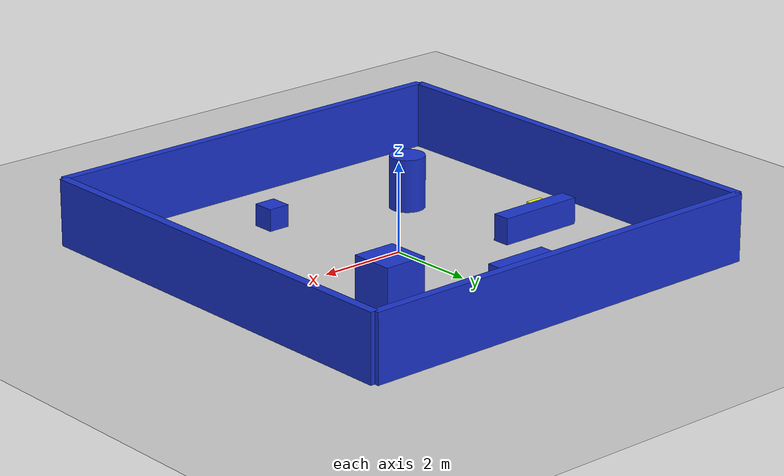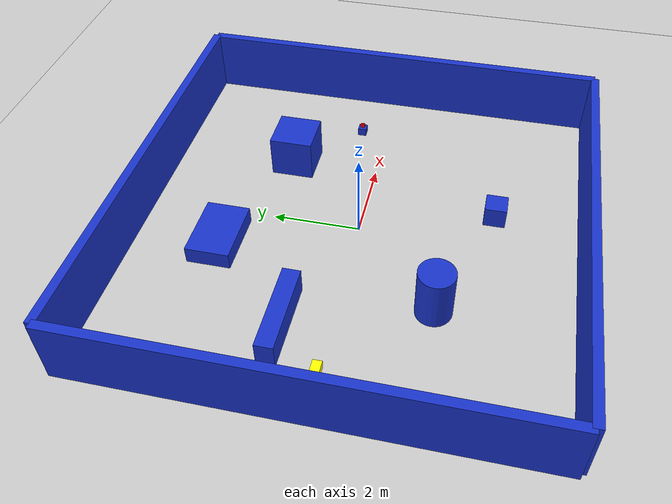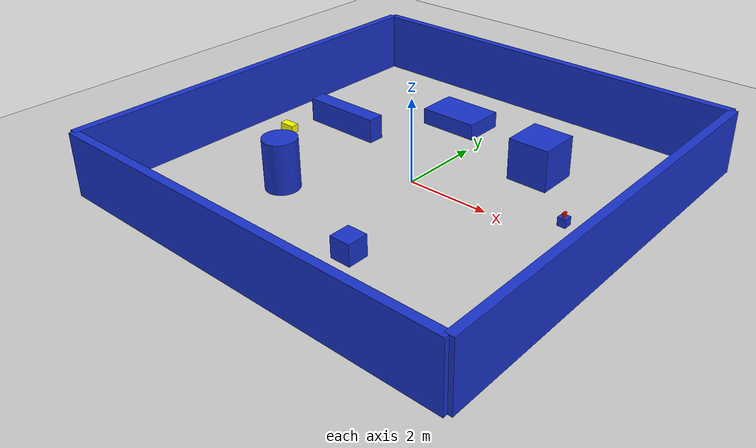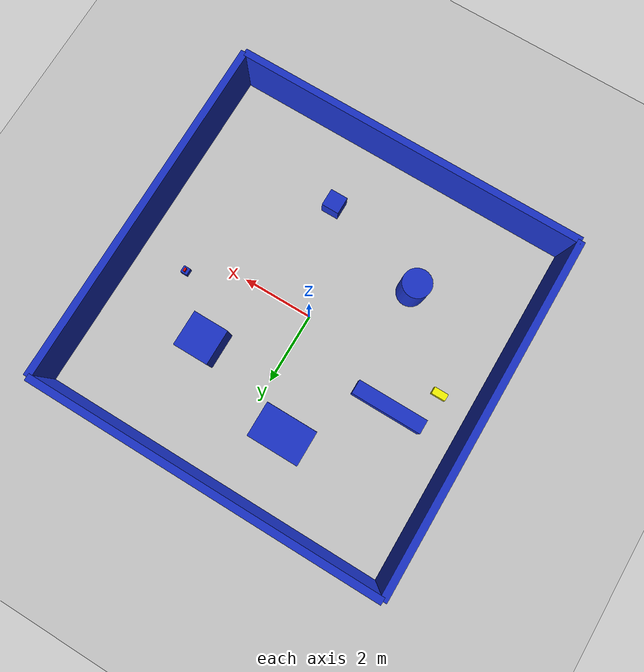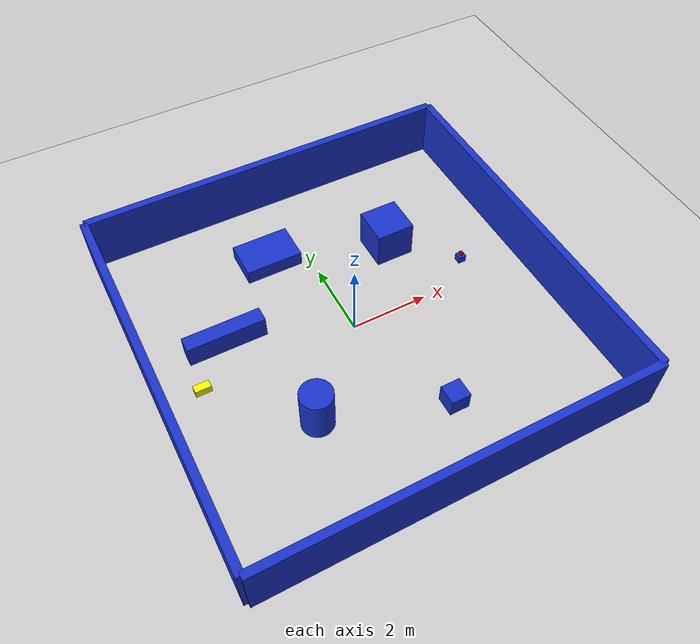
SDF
<?xml version="1.0"?>
<sdf version="1.9">
    <world name="empty_world">
        <physics name="1ms" type="ignored">
            <max_step_size>0.001</max_step_size>
            <real_time_factor>1.0</real_time_factor>
        </physics>
        <light type="directional" name="sun">
            <cast_shadows>true</cast_shadows>
            <pose>0 0 10 0 0 0</pose>
            <diffuse>0.8 0.8 0.8 1</diffuse>
            <specular>0.2 0.2 0.2 1</specular>
            <attenuation>
                <range>1000</range>
                <constant>0.9</constant>
                <linear>0.01</linear>
                <quadratic>0.001</quadratic>
            </attenuation>
            <direction>-0.5 0.1 -0.9</direction>
        </light>
        <gravity>0 0 -9.8000000000000007</gravity>
        <scene>
            <ambient>0.400000006 0.400000006 0.400000006 1</ambient>
            <background>0.699999988 0.699999988 0.699999988 1</background>
            <shadows>true</shadows>
        </scene>
        <!-- Ground plane -->
        <model name="ground_plane">
            <static>true</static>
            <link name="link">
                <collision name="collision">
                    <geometry>
                        <plane>
                            <normal>0 0 1</normal>
                            <size>100 100</size>
                        </plane>
                    </geometry>
                    <surface>
                        <friction>
                            <ode>
                                <mu>50</mu>
                            </ode>
                        </friction>
                        <bounce />
                        <contact />
                    </surface>
                </collision>
                <visual name="visual">
                    <geometry>
                        <plane>
                            <normal>0 0 1</normal>
                            <size>100 100</size>
                        </plane>
                    </geometry>
                    <material>
                        <ambient>0.8 0.8 0.8 1</ambient>
                        <diffuse>0.8 0.8 0.8 1</diffuse>
                        <specular>0.8 0.8 0.8 1</specular>
                    </material>
                </visual>
            </link>
        </model>
        <!-- ADDITIONAL WALLS -->
        <model name="wall_test">
            <static>true</static>
            <pose>0 5 0.75 0 0 0</pose>
            <link name="link">
                <collision name="collision">
                    <geometry>
                        <box>
                            <size>10 0.2 1.5</size>
                        </box>
                    </geometry>
                </collision>
                <visual name="visual">
                    <geometry>
                        <box>
                            <size>10 0.2 1.5</size>
                        </box>
                    </geometry>
                    <material>
                        <ambient>0.1 0.2 0.8 1</ambient>
                        <diffuse>0.1 0.2 0.8 1</diffuse>
                        <specular>0.2 0.2 0.2 1</specular>
                    </material>
                </visual>
            </link>
        </model>
        <model name="wall_back">
            <static>true</static>
            <pose>0 -5 0.75 0 0 0</pose>
            <link name="link">
                <collision name="collision">
                    <geometry>
                        <box>
                            <size>10 0.2 1.5</size>
                        </box>
                    </geometry>
                </collision>
                <visual name="visual">
                    <geometry>
                        <box>
                            <size>10 0.2 1.5</size>
                        </box>
                    </geometry>
                    <material>
                        <ambient>0.1 0.2 0.8 1</ambient>
                        <diffuse>0.1 0.2 0.8 1</diffuse>
                        <specular>0.2 0.2 0.2 1</specular>
                    </material>
                </visual>
            </link>
        </model>

        <model name="wall_left">
            <static>true</static>
            <pose>-5 0 0.75 0 0 0</pose>
            <link name="link">
                <collision name="collision">
                    <geometry>
                        <box>
                            <size>0.2 10 1.5</size>
                        </box>
                    </geometry>
                </collision>
                <visual name="visual">
                    <geometry>
                        <box>
                            <size>0.2 10 1.5</size>
                        </box>
                    </geometry>
                    <material>
                        <ambient>0.1 0.2 0.8 1</ambient>
                        <diffuse>0.1 0.2 0.8 1</diffuse>
                        <specular>0.2 0.2 0.2 1</specular>
                    </material>
                </visual>
            </link>
        </model>

        <model name="wall_right">
            <static>true</static>
            <pose>5 0 0.75 0 0 0</pose>
            <link name="link">
                <collision name="collision">
                    <geometry>
                        <box>
                            <size>0.2 10 1.5</size>
                        </box>
                    </geometry>
                </collision>
                <visual name="visual">
                    <geometry>
                        <box>
                            <size>0.2 10 1.5</size>
                        </box>
                    </geometry>
                    <material>
                        <ambient>0.1 0.2 0.8 1</ambient>
                        <diffuse>0.1 0.2 0.8 1</diffuse>
                        <specular>0.2 0.2 0.2 1</specular>
                    </material>
                </visual>
            </link>
        </model>

        <!-- OBJECTS -->

        <model name="box_object_1">
            <static>true</static>
            <pose>2 2 0.5 0 0 0</pose>
            <link name="link">
                <collision name="collision">
                    <geometry>
                        <box>
                            <size>1 1 1</size>
                        </box>
                    </geometry>
                </collision>
                <visual name="visual">
                    <geometry>
                        <box>
                            <size>1 1 1</size>
                        </box>
                    </geometry>
                    <material>
                        <ambient>0.1 0.2 0.8 1</ambient>
                        <diffuse>0.1 0.2 0.8 1</diffuse>
                        <specular>0.2 0.2 0.2 1</specular>
                    </material>
                </visual>
            </link>
        </model>

        <model name="cylinder_object">
            <static>true</static>
            <pose>-2 -2 0.6 0 0 0</pose>
            <link name="link">
                <collision name="collision">
                    <geometry>
                        <cylinder>
                            <radius>0.4</radius>
                            <length>1.2</length>
                        </cylinder>
                    </geometry>
                </collision>
                <visual name="visual">
                    <geometry>
                        <cylinder>
                            <radius>0.4</radius>
                            <length>1.2</length>
                        </cylinder>
                    </geometry>
                    <material>
                        <ambient>0.1 0.2 0.8 1</ambient>
                        <diffuse>0.1 0.2 0.8 1</diffuse>
                        <specular>0.2 0.2 0.2 1</specular>
                    </material>
                </visual>
            </link>
        </model>
        <model name="box_object_3">
            <static>true</static>
            <pose>1 -3 0.25 0 0 0</pose>
            <link name="link">
                <collision name="collision">
                    <geometry>
                        <box>
                            <size>0.5 0.5 0.5</size>
                        </box>
                    </geometry>
                </collision>
                <visual name="visual">
                    <geometry>
                        <box>
                            <size>0.5 0.5 0.5</size>
                        </box>
                    </geometry>
                    <material>
                        <ambient>0.1 0.2 0.8 1</ambient>
                        <diffuse>0.1 0.2 0.8 1</diffuse>
                        <specular>0.2 0.2 0.2 1</specular>
                    </material>
                </visual>
            </link>
        </model>
        <model name="box_object_4">
            <static>true</static>
            <pose>-3 1 0.3 0 0 0</pose>
            <link name="link">
                <collision name="collision">
                    <geometry>
                        <box>
                            <size>2.0 0.4 0.6</size>
                        </box>
                    </geometry>
                </collision>
                <visual name="visual">
                    <geometry>
                        <box>
                            <size>2.0 0.4 0.6</size>
                        </box>
                    </geometry>
                    <material>
                        <ambient>0.1 0.2 0.8 1</ambient>
                        <diffuse>0.1 0.2 0.8 1</diffuse>
                        <specular>0.2 0.2 0.2 1</specular>
                    </material>
                </visual>
            </link>
        </model>
        <model name="box_object_5">
            <static>true</static>
            <pose>-1 3 0.2 0 0 0</pose>
            <link name="link">
                <collision name="collision">
                    <geometry>
                        <box>
                            <size>1.5 1.0 0.4</size>
                        </box>
                    </geometry>
                </collision>
                <visual name="visual">
                    <geometry>
                        <box>
                            <size>1.5 1.0 0.4</size>
                        </box>
                    </geometry>
                    <material>
                        <ambient>0.1 0.2 0.8 1</ambient>
                        <diffuse>0.1 0.2 0.8 1</diffuse>
                        <specular>0.2 0.2 0.2 1</specular>
                    </material>
                </visual>
            </link>
        </model>
        <model name="cylinder_object_2">
            <static>true</static>
            <pose>3.5 0.65 0.1 0 0 0</pose>
            <link name="link">
                <collision name="collision">
                    <geometry>
                        <box>
                            <size>0.2 0.2 0.2</size>
                        </box>
                    </geometry>
                </collision>
                <visual name="visual">
                    <geometry>
                        <box>
                            <size>0.2 0.2 0.2</size>
                        </box>
                    </geometry>
                    <material>
                        <ambient>0.1 0.2 0.8 1</ambient>
                        <diffuse>0.1 0.2 0.8 1</diffuse>
                        <specular>0.2 0.2 0.2 1</specular>
                    </material>
                </visual>
            </link>
        </model>
        <model name="target_box">
            <static>false</static>
            <pose>3.5 0.65 0.25 0 0 0</pose>
            <link name="link">
                <visual name="visual">
                    <geometry>
                        <box>
                            <size>0.05 0.1 0.1</size>
                        </box>
                    </geometry>
                    <material>
                        <ambient>1 0 0 1</ambient>
                        <diffuse>1 0 0 1</diffuse>
                    </material>
                </visual>
                <collision name="collision">
                    <geometry>
                        <box>
                            <size>0.05 0.1 0.1</size>
                        </box>
                    </geometry>
                </collision>
                <inertial>
                    <mass>0.1</mass>
                </inertial>
            </link>
        </model>
        <!-- DOCK STATION -->
        <model name="dock_station">
            <static>true</static>
            <pose>-4 0 0.1 0 0 0</pose> <!-- x y z roll pitch yaw -->
            <link name="dock_link">
                <visual name="dock_visual">
                    <geometry>
                        <box>
                            <size>0.4 0.2 0.2</size>
                        </box>
                    </geometry>
                    <material>
                        <ambient>1 1 0 1</ambient>
                        <diffuse>1 1 0 1</diffuse>
                    </material>
                </visual>
                <collision name="dock_collision">
                    <geometry>
                        <box>
                            <size>0.4 0.2 0.2</size>
                        </box>
                    </geometry>
                </collision>
            </link>
        </model>
    </world>
</sdf>
